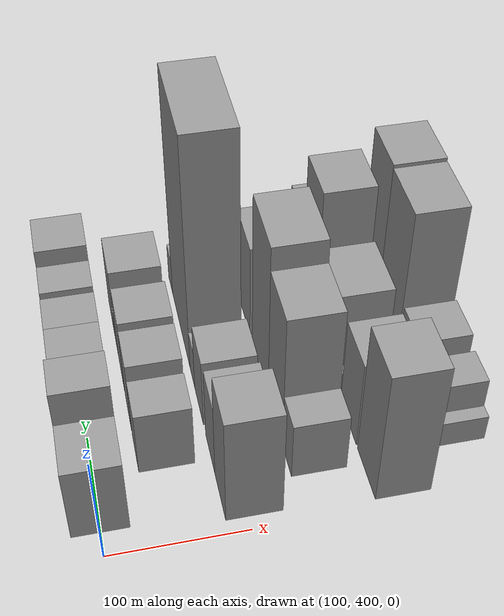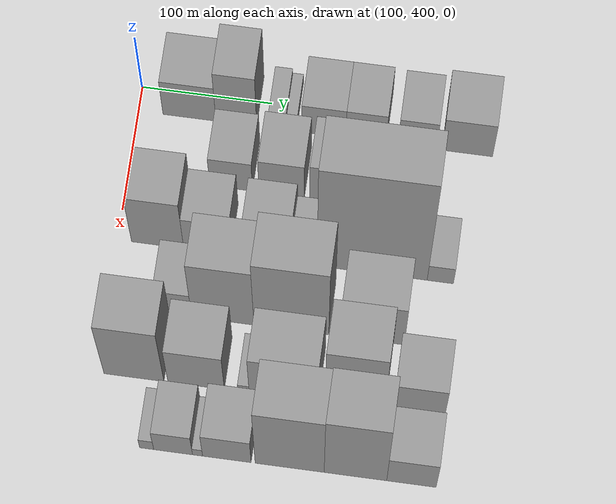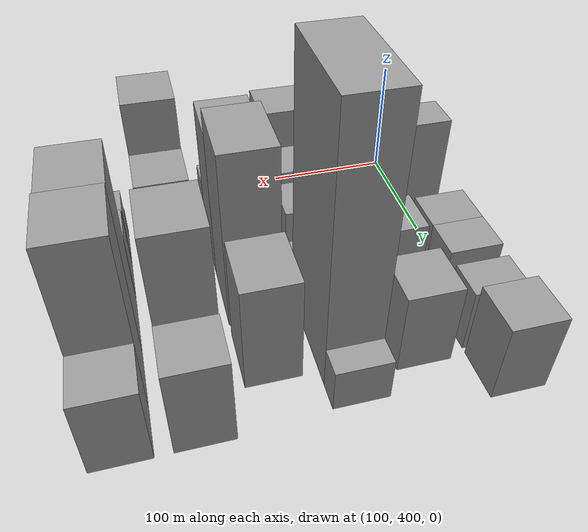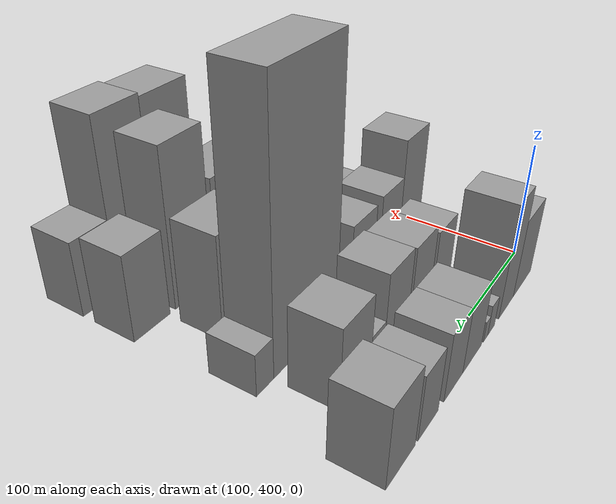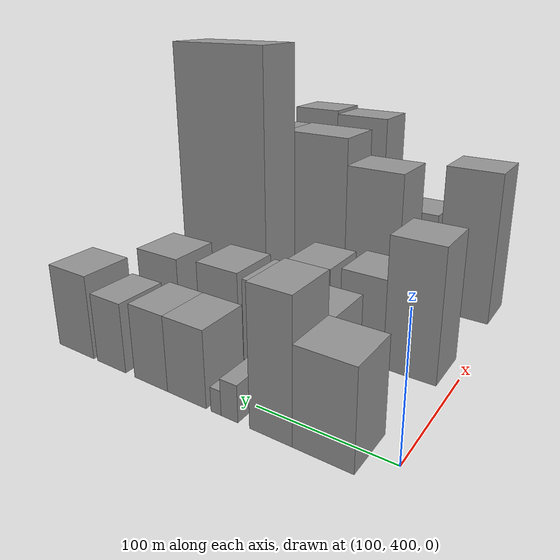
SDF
<sdf version="1.6">
 <world name="default">
  <model name="building_39">
   <static>1</static>
   <pose>100.0000 439.3094 0 0.000000 0.000000 0.000000</pose>
   <link name="link">
    <pose>0 0 34.50 0 0 0</pose>
    <collision name="collision"><geometry><box><size>40.0000 40.8134 69.0000</size></box></geometry></collision>
    <visual name="visual">
     <cast_shadows>0</cast_shadows>
     <geometry><box><size>40.0000 40.8134 69.0000</size></box></geometry>
     <material>
      <script>
       <uri>model://grey_wall/materials/scripts</uri>
       <uri>model://grey_wall/materials/textures</uri>
       <name>vrc/grey_wall</name>
      </script>
     </material>
    </visual>
   </link>
  </model>
  <model name="building_40">
   <static>1</static>
   <pose>100.0000 475.4069 0 0.000000 0.000000 0.000000</pose>
   <link name="link">
    <pose>0 0 49.50 0 0 0</pose>
    <collision name="collision"><geometry><box><size>40.0000 31.3816 99.0000</size></box></geometry></collision>
    <visual name="visual">
     <cast_shadows>0</cast_shadows>
     <geometry><box><size>40.0000 31.3816 99.0000</size></box></geometry>
     <material>
      <script>
       <uri>model://grey_wall/materials/scripts</uri>
       <uri>model://grey_wall/materials/textures</uri>
       <name>vrc/grey_wall</name>
      </script>
     </material>
    </visual>
   </link>
  </model>
  <model name="building_41">
   <static>1</static>
   <pose>100.0000 506.8085 0 0.000000 0.000000 0.000000</pose>
   <link name="link">
    <pose>0 0 13.50 0 0 0</pose>
    <collision name="collision"><geometry><box><size>40.0000 13.4217 27.0000</size></box></geometry></collision>
    <visual name="visual">
     <cast_shadows>0</cast_shadows>
     <geometry><box><size>40.0000 13.4217 27.0000</size></box></geometry>
     <material>
      <script>
       <uri>model://grey_wall/materials/scripts</uri>
       <uri>model://grey_wall/materials/textures</uri>
       <name>vrc/grey_wall</name>
      </script>
     </material>
    </visual>
   </link>
  </model>
  <model name="building_42">
   <static>1</static>
   <pose>100.0000 517.6482 0 0.000000 0.000000 0.000000</pose>
   <link name="link">
    <pose>0 0 9.00 0 0 0</pose>
    <collision name="collision"><geometry><box><size>40.0000 8.2577 18.0000</size></box></geometry></collision>
    <visual name="visual">
     <cast_shadows>0</cast_shadows>
     <geometry><box><size>40.0000 8.2577 18.0000</size></box></geometry>
     <material>
      <script>
       <uri>model://grey_wall/materials/scripts</uri>
       <uri>model://grey_wall/materials/textures</uri>
       <name>vrc/grey_wall</name>
      </script>
     </material>
    </visual>
   </link>
  </model>
  <model name="building_43">
   <static>1</static>
   <pose>100.0000 542.6935 0 0.000000 0.000000 0.000000</pose>
   <link name="link">
    <pose>0 0 28.50 0 0 0</pose>
    <collision name="collision"><geometry><box><size>40.0000 33.8327 57.0000</size></box></geometry></collision>
    <visual name="visual">
     <cast_shadows>0</cast_shadows>
     <geometry><box><size>40.0000 33.8327 57.0000</size></box></geometry>
     <material>
      <script>
       <uri>model://grey_wall/materials/scripts</uri>
       <uri>model://grey_wall/materials/textures</uri>
       <name>vrc/grey_wall</name>
      </script>
     </material>
    </visual>
   </link>
  </model>
  <model name="building_44">
   <static>1</static>
   <pose>100.0000 575.2083 0 0.000000 0.000000 0.000000</pose>
   <link name="link">
    <pose>0 0 28.50 0 0 0</pose>
    <collision name="collision"><geometry><box><size>40.0000 31.1970 57.0000</size></box></geometry></collision>
    <visual name="visual">
     <cast_shadows>0</cast_shadows>
     <geometry><box><size>40.0000 31.1970 57.0000</size></box></geometry>
     <material>
      <script>
       <uri>model://grey_wall/materials/scripts</uri>
       <uri>model://grey_wall/materials/textures</uri>
       <name>vrc/grey_wall</name>
      </script>
     </material>
    </visual>
   </link>
  </model>
  <model name="building_45">
   <static>1</static>
   <pose>100.0000 614.5496 0 0.000000 0.000000 0.000000</pose>
   <link name="link">
    <pose>0 0 27.00 0 0 0</pose>
    <collision name="collision"><geometry><box><size>40.0000 29.4855 54.0000</size></box></geometry></collision>
    <visual name="visual">
     <cast_shadows>0</cast_shadows>
     <geometry><box><size>40.0000 29.4855 54.0000</size></box></geometry>
     <material>
      <script>
       <uri>model://grey_wall/materials/scripts</uri>
       <uri>model://grey_wall/materials/textures</uri>
       <name>vrc/grey_wall</name>
      </script>
     </material>
    </visual>
   </link>
  </model>
  <model name="building_46">
   <static>1</static>
   <pose>100.0000 652.6038 0 0.000000 0.000000 0.000000</pose>
   <link name="link">
    <pose>0 0 33.00 0 0 0</pose>
    <collision name="collision"><geometry><box><size>40.0000 38.6227 66.0000</size></box></geometry></collision>
    <visual name="visual">
     <cast_shadows>0</cast_shadows>
     <geometry><box><size>40.0000 38.6227 66.0000</size></box></geometry>
     <material>
      <script>
       <uri>model://grey_wall/materials/scripts</uri>
       <uri>model://grey_wall/materials/textures</uri>
       <name>vrc/grey_wall</name>
      </script>
     </material>
    </visual>
   </link>
  </model>
  <model name="building_83">
   <static>1</static>
   <pose>152.0000 478.9262 0 0.000000 0.000000 0.000000</pose>
   <link name="link">
    <pose>0 0 30.00 0 0 0</pose>
    <collision name="collision"><geometry><box><size>40.0000 32.5907 60.0000</size></box></geometry></collision>
    <visual name="visual">
     <cast_shadows>0</cast_shadows>
     <geometry><box><size>40.0000 32.5907 60.0000</size></box></geometry>
     <material>
      <script>
       <uri>model://grey_wall/materials/scripts</uri>
       <uri>model://grey_wall/materials/textures</uri>
       <name>vrc/grey_wall</name>
      </script>
     </material>
    </visual>
   </link>
  </model>
  <model name="building_84">
   <static>1</static>
   <pose>152.0000 517.5690 0 0.000000 0.000000 0.000000</pose>
   <link name="link">
    <pose>0 0 34.50 0 0 0</pose>
    <collision name="collision"><geometry><box><size>40.0000 34.6949 69.0000</size></box></geometry></collision>
    <visual name="visual">
     <cast_shadows>0</cast_shadows>
     <geometry><box><size>40.0000 34.6949 69.0000</size></box></geometry>
     <material>
      <script>
       <uri>model://grey_wall/materials/scripts</uri>
       <uri>model://grey_wall/materials/textures</uri>
       <name>vrc/grey_wall</name>
      </script>
     </material>
    </visual>
   </link>
  </model>
  <model name="building_85">
   <static>1</static>
   <pose>152.0000 557.3188 0 0.000000 0.000000 0.000000</pose>
   <link name="link">
    <pose>0 0 36.00 0 0 0</pose>
    <collision name="collision"><geometry><box><size>40.0000 36.8047 72.0000</size></box></geometry></collision>
    <visual name="visual">
     <cast_shadows>0</cast_shadows>
     <geometry><box><size>40.0000 36.8047 72.0000</size></box></geometry>
     <material>
      <script>
       <uri>model://grey_wall/materials/scripts</uri>
       <uri>model://grey_wall/materials/textures</uri>
       <name>vrc/grey_wall</name>
      </script>
     </material>
    </visual>
   </link>
  </model>
  <model name="building_86">
   <static>1</static>
   <pose>152.0000 585.4722 0 0.000000 0.000000 0.000000</pose>
   <link name="link">
    <pose>0 0 16.50 0 0 0</pose>
    <collision name="collision"><geometry><box><size>40.0000 19.5022 33.0000</size></box></geometry></collision>
    <visual name="visual">
     <cast_shadows>0</cast_shadows>
     <geometry><box><size>40.0000 19.5022 33.0000</size></box></geometry>
     <material>
      <script>
       <uri>model://grey_wall/materials/scripts</uri>
       <uri>model://grey_wall/materials/textures</uri>
       <name>vrc/grey_wall</name>
      </script>
     </material>
    </visual>
   </link>
  </model>
  <model name="building_87">
   <static>1</static>
   <pose>152.0000 615.3806 0 0.000000 0.000000 0.000000</pose>
   <link name="link">
    <pose>0 0 34.50 0 0 0</pose>
    <collision name="collision"><geometry><box><size>40.0000 40.3146 69.0000</size></box></geometry></collision>
    <visual name="visual">
     <cast_shadows>0</cast_shadows>
     <geometry><box><size>40.0000 40.3146 69.0000</size></box></geometry>
     <material>
      <script>
       <uri>model://grey_wall/materials/scripts</uri>
       <uri>model://grey_wall/materials/textures</uri>
       <name>vrc/grey_wall</name>
      </script>
     </material>
    </visual>
   </link>
  </model>
  <model name="building_134">
   <static>1</static>
   <pose>204.0000 430.7013 0 0.000000 0.000000 0.000000</pose>
   <link name="link">
    <pose>0 0 51.00 0 0 0</pose>
    <collision name="collision"><geometry><box><size>40.0000 39.6786 102.0000</size></box></geometry></collision>
    <visual name="visual">
     <cast_shadows>0</cast_shadows>
     <geometry><box><size>40.0000 39.6786 102.0000</size></box></geometry>
     <material>
      <script>
       <uri>model://grey_wall/materials/scripts</uri>
       <uri>model://grey_wall/materials/textures</uri>
       <name>vrc/grey_wall</name>
      </script>
     </material>
    </visual>
   </link>
  </model>
  <model name="building_135">
   <static>1</static>
   <pose>204.0000 468.2924 0 0.000000 0.000000 0.000000</pose>
   <link name="link">
    <pose>0 0 34.50 0 0 0</pose>
    <collision name="collision"><geometry><box><size>40.0000 35.5037 69.0000</size></box></geometry></collision>
    <visual name="visual">
     <cast_shadows>0</cast_shadows>
     <geometry><box><size>40.0000 35.5037 69.0000</size></box></geometry>
     <material>
      <script>
       <uri>model://grey_wall/materials/scripts</uri>
       <uri>model://grey_wall/materials/textures</uri>
       <name>vrc/grey_wall</name>
      </script>
     </material>
    </visual>
   </link>
  </model>
  <model name="building_136">
   <static>1</static>
   <pose>204.0000 513.2655 0 0.000000 0.000000 0.000000</pose>
   <link name="link">
    <pose>0 0 33.00 0 0 0</pose>
    <collision name="collision"><geometry><box><size>40.0000 36.4424 66.0000</size></box></geometry></collision>
    <visual name="visual">
     <cast_shadows>0</cast_shadows>
     <geometry><box><size>40.0000 36.4424 66.0000</size></box></geometry>
     <material>
      <script>
       <uri>model://grey_wall/materials/scripts</uri>
       <uri>model://grey_wall/materials/textures</uri>
       <name>vrc/grey_wall</name>
      </script>
     </material>
    </visual>
   </link>
  </model>
  <model name="building_137">
   <static>1</static>
   <pose>204.0000 541.5413 0 0.000000 0.000000 0.000000</pose>
   <link name="link">
    <pose>0 0 19.50 0 0 0</pose>
    <collision name="collision"><geometry><box><size>40.0000 20.1091 39.0000</size></box></geometry></collision>
    <visual name="visual">
     <cast_shadows>0</cast_shadows>
     <geometry><box><size>40.0000 20.1091 39.0000</size></box></geometry>
     <material>
      <script>
       <uri>model://grey_wall/materials/scripts</uri>
       <uri>model://grey_wall/materials/textures</uri>
       <name>vrc/grey_wall</name>
      </script>
     </material>
    </visual>
   </link>
  </model>
  <model name="building_138">
   <static>1</static>
   <pose>204.0000 593.1459 0 0.000000 0.000000 0.000000</pose>
   <link name="link">
    <pose>0 0 109.50 0 0 0</pose>
    <collision name="collision"><geometry><box><size>40.0000 83.1002 219.0000</size></box></geometry></collision>
    <visual name="visual">
     <cast_shadows>0</cast_shadows>
     <geometry><box><size>40.0000 83.1002 219.0000</size></box></geometry>
     <material>
      <script>
       <uri>model://grey_wall/materials/scripts</uri>
       <uri>model://grey_wall/materials/textures</uri>
       <name>vrc/grey_wall</name>
      </script>
     </material>
    </visual>
   </link>
  </model>
  <model name="building_139">
   <static>1</static>
   <pose>204.0000 644.5936 0 0.000000 0.000000 0.000000</pose>
   <link name="link">
    <pose>0 0 18.00 0 0 0</pose>
    <collision name="collision"><geometry><box><size>40.0000 19.7951 36.0000</size></box></geometry></collision>
    <visual name="visual">
     <cast_shadows>0</cast_shadows>
     <geometry><box><size>40.0000 19.7951 36.0000</size></box></geometry>
     <material>
      <script>
       <uri>model://grey_wall/materials/scripts</uri>
       <uri>model://grey_wall/materials/textures</uri>
       <name>vrc/grey_wall</name>
      </script>
     </material>
    </visual>
   </link>
  </model>
  <model name="building_181">
   <static>1</static>
   <pose>256.0000 450.6161 0 0.000000 0.000000 0.000000</pose>
   <link name="link">
    <pose>0 0 27.00 0 0 0</pose>
    <collision name="collision"><geometry><box><size>40.0000 27.3212 54.0000</size></box></geometry></collision>
    <visual name="visual">
     <cast_shadows>0</cast_shadows>
     <geometry><box><size>40.0000 27.3212 54.0000</size></box></geometry>
     <material>
      <script>
       <uri>model://grey_wall/materials/scripts</uri>
       <uri>model://grey_wall/materials/textures</uri>
       <name>vrc/grey_wall</name>
      </script>
     </material>
    </visual>
   </link>
  </model>
  <model name="building_182">
   <static>1</static>
   <pose>256.0000 487.7303 0 0.000000 0.000000 0.000000</pose>
   <link name="link">
    <pose>0 0 64.50 0 0 0</pose>
    <collision name="collision"><geometry><box><size>40.0000 46.9072 129.0000</size></box></geometry></collision>
    <visual name="visual">
     <cast_shadows>0</cast_shadows>
     <geometry><box><size>40.0000 46.9072 129.0000</size></box></geometry>
     <material>
      <script>
       <uri>model://grey_wall/materials/scripts</uri>
       <uri>model://grey_wall/materials/textures</uri>
       <name>vrc/grey_wall</name>
      </script>
     </material>
    </visual>
   </link>
  </model>
  <model name="building_183">
   <static>1</static>
   <pose>256.0000 539.2598 0 0.000000 0.000000 0.000000</pose>
   <link name="link">
    <pose>0 0 75.00 0 0 0</pose>
    <collision name="collision"><geometry><box><size>40.0000 56.1517 150.0000</size></box></geometry></collision>
    <visual name="visual">
     <cast_shadows>0</cast_shadows>
     <geometry><box><size>40.0000 56.1517 150.0000</size></box></geometry>
     <material>
      <script>
       <uri>model://grey_wall/materials/scripts</uri>
       <uri>model://grey_wall/materials/textures</uri>
       <name>vrc/grey_wall</name>
      </script>
     </material>
    </visual>
   </link>
  </model>
  <model name="building_184">
   <static>1</static>
   <pose>256.0000 600.1621 0 0.000000 0.000000 0.000000</pose>
   <link name="link">
    <pose>0 0 45.00 0 0 0</pose>
    <collision name="collision"><geometry><box><size>40.0000 47.6529 90.0000</size></box></geometry></collision>
    <visual name="visual">
     <cast_shadows>0</cast_shadows>
     <geometry><box><size>40.0000 47.6529 90.0000</size></box></geometry>
     <material>
      <script>
       <uri>model://grey_wall/materials/scripts</uri>
       <uri>model://grey_wall/materials/textures</uri>
       <name>vrc/grey_wall</name>
      </script>
     </material>
    </visual>
   </link>
  </model>
  <model name="building_231">
   <static>1</static>
   <pose>308.0000 428.8838 0 0.000000 0.000000 0.000000</pose>
   <link name="link">
    <pose>0 0 63.00 0 0 0</pose>
    <collision name="collision"><geometry><box><size>40.0000 44.8349 126.0000</size></box></geometry></collision>
    <visual name="visual">
     <cast_shadows>0</cast_shadows>
     <geometry><box><size>40.0000 44.8349 126.0000</size></box></geometry>
     <material>
      <script>
       <uri>model://grey_wall/materials/scripts</uri>
       <uri>model://grey_wall/materials/textures</uri>
       <name>vrc/grey_wall</name>
      </script>
     </material>
    </visual>
   </link>
  </model>
  <model name="building_232">
   <static>1</static>
   <pose>308.0000 475.3979 0 0.000000 0.000000 0.000000</pose>
   <link name="link">
    <pose>0 0 42.00 0 0 0</pose>
    <collision name="collision"><geometry><box><size>40.0000 42.1933 84.0000</size></box></geometry></collision>
    <visual name="visual">
     <cast_shadows>0</cast_shadows>
     <geometry><box><size>40.0000 42.1933 84.0000</size></box></geometry>
     <material>
      <script>
       <uri>model://grey_wall/materials/scripts</uri>
       <uri>model://grey_wall/materials/textures</uri>
       <name>vrc/grey_wall</name>
      </script>
     </material>
    </visual>
   </link>
  </model>
  <model name="building_233">
   <static>1</static>
   <pose>308.0000 510.7390 0 0.000000 0.000000 0.000000</pose>
   <link name="link">
    <pose>0 0 9.00 0 0 0</pose>
    <collision name="collision"><geometry><box><size>40.0000 8.4888 18.0000</size></box></geometry></collision>
    <visual name="visual">
     <cast_shadows>0</cast_shadows>
     <geometry><box><size>40.0000 8.4888 18.0000</size></box></geometry>
     <material>
      <script>
       <uri>model://grey_wall/materials/scripts</uri>
       <uri>model://grey_wall/materials/textures</uri>
       <name>vrc/grey_wall</name>
      </script>
     </material>
    </visual>
   </link>
  </model>
  <model name="building_234">
   <static>1</static>
   <pose>308.0000 540.7319 0 0.000000 0.000000 0.000000</pose>
   <link name="link">
    <pose>0 0 45.00 0 0 0</pose>
    <collision name="collision"><geometry><box><size>40.0000 51.4970 90.0000</size></box></geometry></collision>
    <visual name="visual">
     <cast_shadows>0</cast_shadows>
     <geometry><box><size>40.0000 51.4970 90.0000</size></box></geometry>
     <material>
      <script>
       <uri>model://grey_wall/materials/scripts</uri>
       <uri>model://grey_wall/materials/textures</uri>
       <name>vrc/grey_wall</name>
      </script>
     </material>
    </visual>
   </link>
  </model>
  <model name="building_235">
   <static>1</static>
   <pose>308.0000 593.7287 0 0.000000 0.000000 0.000000</pose>
   <link name="link">
    <pose>0 0 69.00 0 0 0</pose>
    <collision name="collision"><geometry><box><size>40.0000 44.4967 138.0000</size></box></geometry></collision>
    <visual name="visual">
     <cast_shadows>0</cast_shadows>
     <geometry><box><size>40.0000 44.4967 138.0000</size></box></geometry>
     <material>
      <script>
       <uri>model://grey_wall/materials/scripts</uri>
       <uri>model://grey_wall/materials/textures</uri>
       <name>vrc/grey_wall</name>
      </script>
     </material>
    </visual>
   </link>
  </model>
  <model name="building_236">
   <static>1</static>
   <pose>308.0000 641.0952 0 0.000000 0.000000 0.000000</pose>
   <link name="link">
    <pose>0 0 37.50 0 0 0</pose>
    <collision name="collision"><geometry><box><size>40.0000 38.2363 75.0000</size></box></geometry></collision>
    <visual name="visual">
     <cast_shadows>0</cast_shadows>
     <geometry><box><size>40.0000 38.2363 75.0000</size></box></geometry>
     <material>
      <script>
       <uri>model://grey_wall/materials/scripts</uri>
       <uri>model://grey_wall/materials/textures</uri>
       <name>vrc/grey_wall</name>
      </script>
     </material>
    </visual>
   </link>
  </model>
  <model name="building_273">
   <static>1</static>
   <pose>360.0000 446.4499 0 0.000000 0.000000 0.000000</pose>
   <link name="link">
    <pose>0 0 12.00 0 0 0</pose>
    <collision name="collision"><geometry><box><size>40.0000 10.4859 24.0000</size></box></geometry></collision>
    <visual name="visual">
     <cast_shadows>0</cast_shadows>
     <geometry><box><size>40.0000 10.4859 24.0000</size></box></geometry>
     <material>
      <script>
       <uri>model://grey_wall/materials/scripts</uri>
       <uri>model://grey_wall/materials/textures</uri>
       <name>vrc/grey_wall</name>
      </script>
     </material>
    </visual>
   </link>
  </model>
  <model name="building_274">
   <static>1</static>
   <pose>360.0000 466.0770 0 0.000000 0.000000 0.000000</pose>
   <link name="link">
    <pose>0 0 25.50 0 0 0</pose>
    <collision name="collision"><geometry><box><size>40.0000 28.7682 51.0000</size></box></geometry></collision>
    <visual name="visual">
     <cast_shadows>0</cast_shadows>
     <geometry><box><size>40.0000 28.7682 51.0000</size></box></geometry>
     <material>
      <script>
       <uri>model://grey_wall/materials/scripts</uri>
       <uri>model://grey_wall/materials/textures</uri>
       <name>vrc/grey_wall</name>
      </script>
     </material>
    </visual>
   </link>
  </model>
  <model name="building_275">
   <static>1</static>
   <pose>360.0000 484.2083 0 0.000000 0.000000 0.000000</pose>
   <link name="link">
    <pose>0 0 9.00 0 0 0</pose>
    <collision name="collision"><geometry><box><size>40.0000 7.4943 18.0000</size></box></geometry></collision>
    <visual name="visual">
     <cast_shadows>0</cast_shadows>
     <geometry><box><size>40.0000 7.4943 18.0000</size></box></geometry>
     <material>
      <script>
       <uri>model://grey_wall/materials/scripts</uri>
       <uri>model://grey_wall/materials/textures</uri>
       <name>vrc/grey_wall</name>
      </script>
     </material>
    </visual>
   </link>
  </model>
  <model name="building_276">
   <static>1</static>
   <pose>360.0000 505.9088 0 0.000000 0.000000 0.000000</pose>
   <link name="link">
    <pose>0 0 30.00 0 0 0</pose>
    <collision name="collision"><geometry><box><size>40.0000 35.9068 60.0000</size></box></geometry></collision>
    <visual name="visual">
     <cast_shadows>0</cast_shadows>
     <geometry><box><size>40.0000 35.9068 60.0000</size></box></geometry>
     <material>
      <script>
       <uri>model://grey_wall/materials/scripts</uri>
       <uri>model://grey_wall/materials/textures</uri>
       <name>vrc/grey_wall</name>
      </script>
     </material>
    </visual>
   </link>
  </model>
  <model name="building_277">
   <static>1</static>
   <pose>360.0000 552.3731 0 0.000000 0.000000 0.000000</pose>
   <link name="link">
    <pose>0 0 73.50 0 0 0</pose>
    <collision name="collision"><geometry><box><size>40.0000 51.0216 147.0000</size></box></geometry></collision>
    <visual name="visual">
     <cast_shadows>0</cast_shadows>
     <geometry><box><size>40.0000 51.0216 147.0000</size></box></geometry>
     <material>
      <script>
       <uri>model://grey_wall/materials/scripts</uri>
       <uri>model://grey_wall/materials/textures</uri>
       <name>vrc/grey_wall</name>
      </script>
     </material>
    </visual>
   </link>
  </model>
  <model name="building_278">
   <static>1</static>
   <pose>360.0000 600.9745 0 0.000000 0.000000 0.000000</pose>
   <link name="link">
    <pose>0 0 75.00 0 0 0</pose>
    <collision name="collision"><geometry><box><size>40.0000 46.1812 150.0000</size></box></geometry></collision>
    <visual name="visual">
     <cast_shadows>0</cast_shadows>
     <geometry><box><size>40.0000 46.1812 150.0000</size></box></geometry>
     <material>
      <script>
       <uri>model://grey_wall/materials/scripts</uri>
       <uri>model://grey_wall/materials/textures</uri>
       <name>vrc/grey_wall</name>
      </script>
     </material>
    </visual>
   </link>
  </model>
  <model name="building_279">
   <static>1</static>
   <pose>360.0000 642.2705 0 0.000000 0.000000 0.000000</pose>
   <link name="link">
    <pose>0 0 33.00 0 0 0</pose>
    <collision name="collision"><geometry><box><size>40.0000 36.4109 66.0000</size></box></geometry></collision>
    <visual name="visual">
     <cast_shadows>0</cast_shadows>
     <geometry><box><size>40.0000 36.4109 66.0000</size></box></geometry>
     <material>
      <script>
       <uri>model://grey_wall/materials/scripts</uri>
       <uri>model://grey_wall/materials/textures</uri>
       <name>vrc/grey_wall</name>
      </script>
     </material>
    </visual>
   </link>
  </model>
 </world>
</sdf>
